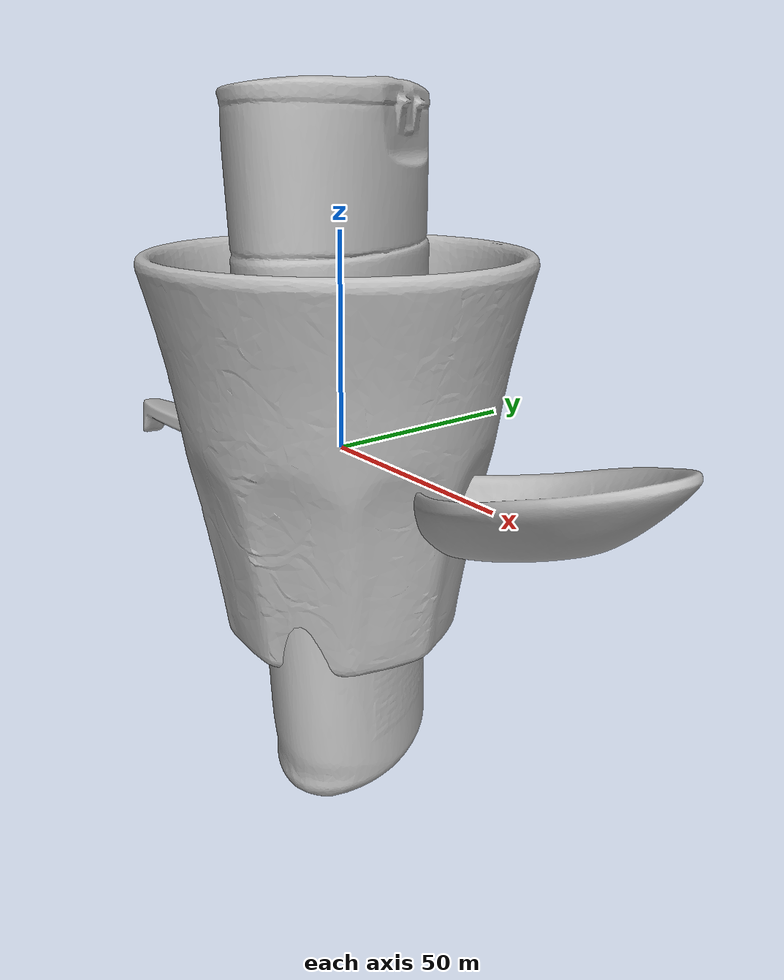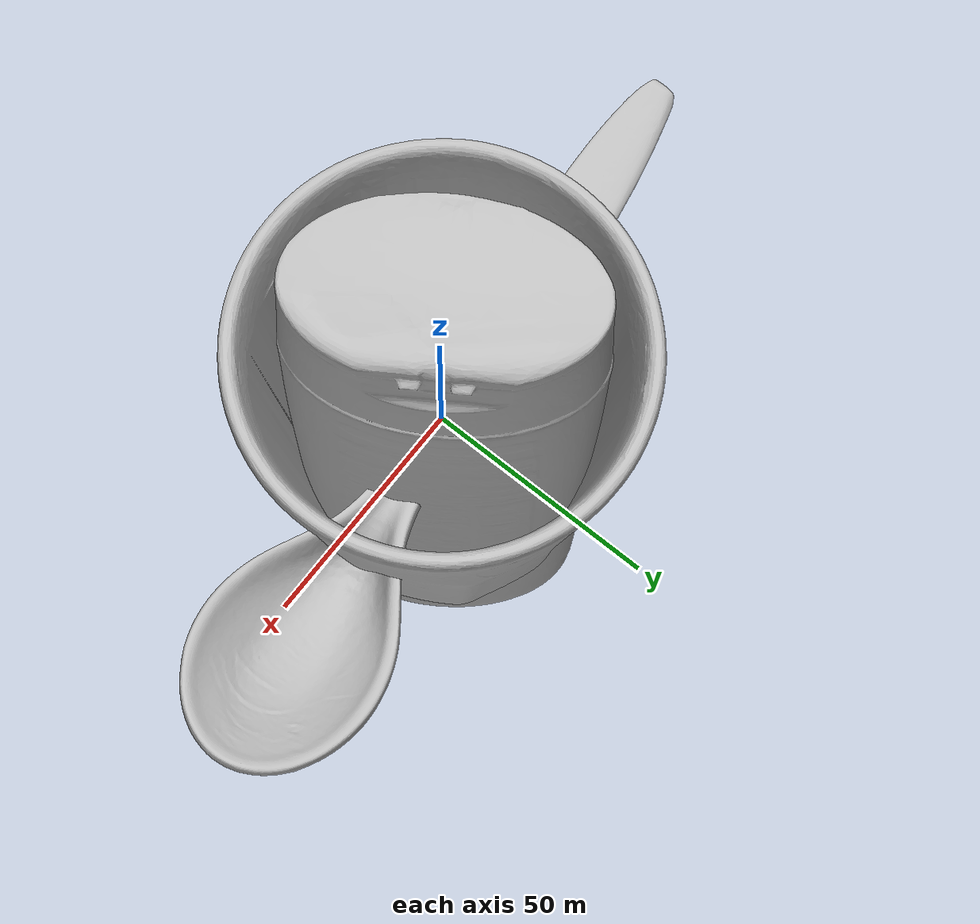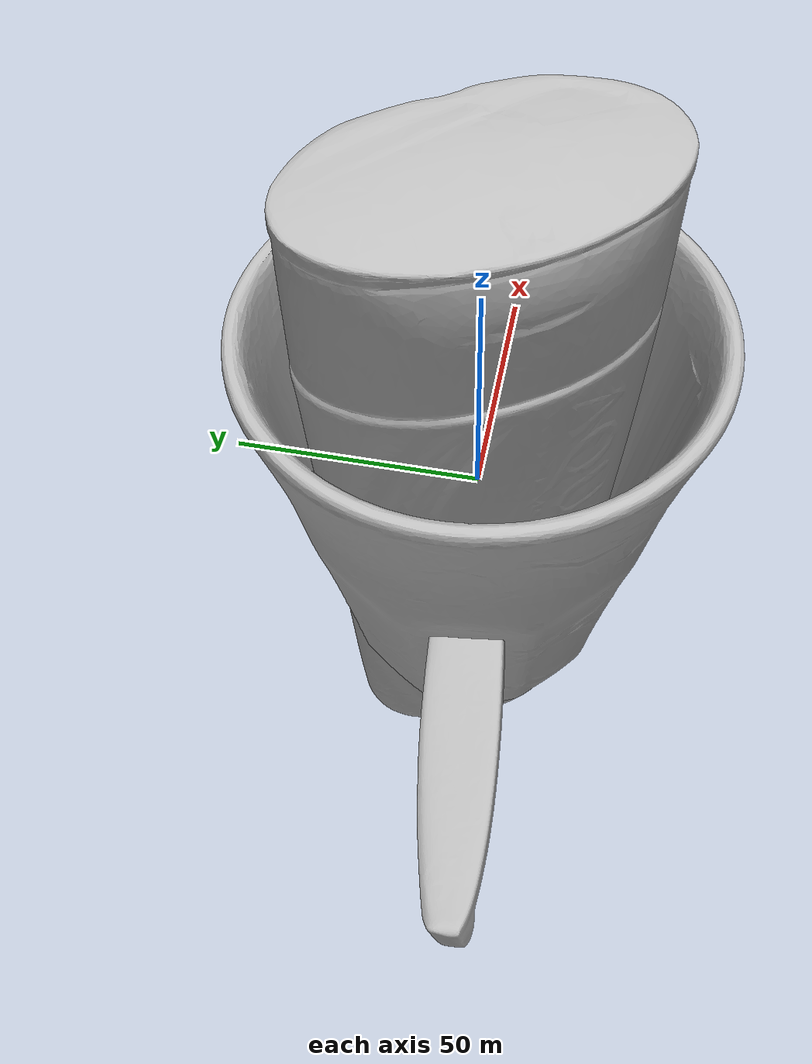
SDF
<sdf version="1.4">
 <world name="default">
  <light name="light1" type="point">
   <pose>0 0 1 0 0 0</pose>
   <diffuse>3 3 3 1</diffuse>
   <specular>3 3 3 1</specular>
  </light>
  <light name="light2" type="point">
   <pose>0 0.5 2 0 0 0</pose>
   <diffuse>1 1 1 1</diffuse>
   <specular>1 1 1 1</specular>
  </light>
  <light name="light3" type="point">
   <pose>0 0.5 2 0 0 0</pose>
   <diffuse>3 3 3 1</diffuse>
   <specular>3 3 3 1</specular>
  </light>
  <scene><ambient>0.7 0.7 0.7</ambient></scene>
  <model name="bottle1">
   <link name="link_bottle1">
    <collision name="default">
     <geometry>
      <mesh><uri>model://conditioner/collision_meshes/collision.obj</uri><scale>1.0 1.0 1.0</scale></mesh>
     </geometry>
     <surface>
      <friction><ode><mu>0.5</mu><mu2>0.5</mu2></ode></friction>
      <contact><ode><max_vel>0</max_vel><min_depth>0.0001</min_depth><kp>1e8</kp></ode></contact>
     </surface>
    </collision>
    <visual name="default">
     <geometry>
      <mesh><uri>model://conditioner/visual_meshes/visual.dae</uri><scale>1.0 1.0 1.0</scale></mesh>
     </geometry>
    </visual>
    <inertial>
     <mass>0.31316134333610535</mass>
     <pose>-0.00055994390277192 -0.0001729748910292983 0.004359682556241751 -0.005038373535624127 0.01530604069317056 0.015072338587352078</pose>
     <inertia>
      <ixx>0.0006812382</ixx>
      <iyy>0.000729753</iyy>
      <izz>0.000105037434</izz>
      <ixy>0</ixy>
      <ixz>0</ixz>
      <iyz>0</iyz>
     </inertia>
    </inertial>
   </link>
   <pose>0.1592370867729187 -0.08441894501447678 0.08122974634170532 0.03689209614310539 -0.015659883931407523 -1.0215270220435955</pose>
  </model>
  <model name="bottle2">
   <link name="link_bottle2">
    <collision name="default">
     <geometry>
      <mesh><uri>model://pigeon/collision_meshes/collision.obj</uri><scale>1.0 1.0 1.0</scale></mesh>
     </geometry>
     <surface>
      <friction><ode><mu>0.5</mu><mu2>0.5</mu2></ode></friction>
      <contact><ode><max_vel>0</max_vel><min_depth>0.0001</min_depth><kp>1e8</kp></ode></contact>
     </surface>
    </collision>
    <visual name="default">
     <geometry><mesh><uri>model://pigeon/visual_meshes/visual.dae</uri><scale>1.0 1.0 1.0</scale></mesh></geometry>
    </visual>
    <inertial>
     <mass>0.6510184407234192</mass>
     <pose>-9.675473847892135e-05 -0.00019276776583865285 -0.01593620888888836 -0.011704407543161608 -0.0012978192378484078 -0.04198827283679603</pose>
     <inertia>
      <ixx>0.0016273881</ixx>
      <iyy>0.0017372583</iyy>
      <izz>0.00033475916</izz>
      <ixy>0</ixy>
      <ixz>0</ixz>
      <iyz>0</iyz>
     </inertia>
    </inertial>
   </link>
   <pose>0.04181762784719467 -0.18338555097579956 0.09864480793476105 2.4377357489179668e-05 2.987276235466157e-06 2.860681171627809</pose>
  </model>
  <model name="silverware1">
   <link name="link_silverware1">
    <collision name="default">
     <geometry>
      <mesh><uri>model://doraemon_spoon/collision_meshes/collision.obj</uri><scale>1.0 1.0 1.0</scale></mesh>
     </geometry>
     <surface>
      <friction><ode><mu>0.5</mu><mu2>0.5</mu2></ode></friction>
      <contact><ode><max_vel>0</max_vel><min_depth>0.0001</min_depth><kp>1e8</kp></ode></contact>
     </surface>
    </collision>
    <visual name="default">
     <geometry>
      <mesh><uri>model://doraemon_spoon/visual_meshes/visual.dae</uri><scale>1.0 1.0 1.0</scale></mesh>
     </geometry>
    </visual>
    <inertial>
     <mass>0.020366016775369644</mass>
     <pose>-0.022165074944496155 -0.0006374584045261145 -0.0033325462136417627 -0.009147200915366215 0.0738041822243956 -0.014123826891092987</pose>
     <inertia>
      <ixx>1.5952605e-06</ixx>
      <iyy>4.5307766e-05</iyy>
      <izz>4.6078047e-05</izz>
      <ixy>0</ixy>
      <ixz>0</ixz>
      <iyz>0</iyz>
     </inertia>
    </inertial>
   </link>
   <pose>-0.00823467317968607 -0.33493149280548096 0.014930068515241146 0.09437268975408691 -0.003980726704143446 -3.007783189780275</pose>
  </model>
  <model name="stationery1">
   <link name="link_stationery1">
    <collision name="default">
     <geometry>
      <mesh><uri>model://correction_fuid/collision_meshes/collision.obj</uri><scale>1.0 1.0 1.0</scale></mesh>
     </geometry>
     <surface>
      <friction><ode><mu>0.5</mu><mu2>0.5</mu2></ode></friction>
      <contact><ode><max_vel>0</max_vel><min_depth>0.0001</min_depth><kp>1e8</kp></ode></contact>
     </surface>
    </collision>
    <visual name="default">
     <geometry>
      <mesh><uri>model://correction_fuid/visual_meshes/visual.dae</uri><scale>1.0 1.0 1.0</scale></mesh>
     </geometry>
    </visual>
    <inertial>
     <mass>0.02487199380993843</mass>
     <pose>-0.00012557733862195164 -0.0009722901741042733 -0.001618212671019137 -0.010846607936808557 0.019488255039962172 -0.015992454917835536</pose>
     <inertia>
      <ixx>2.4088951e-05</ixx>
      <iyy>1.4578937e-06</iyy>
      <izz>2.4715917e-05</izz>
      <ixy>0</ixy>
      <ixz>0</ixz>
      <iyz>0</iyz>
     </inertia>
    </inertial>
   </link>
   <pose>-0.08533995598554611 -0.2821342647075653 0.009632843546569347 -0.0017261465051648865 -0.056142970822248915 3.134197692940084</pose>
  </model>
  <model name="bowl1">
   <link name="link_bowl1">
    <collision name="default">
     <geometry>
      <mesh><uri>model://doraemon_bowl/collision_meshes/collision.obj</uri><scale>1.0 1.0 1.0</scale></mesh>
     </geometry>
     <surface>
      <friction><ode><mu>0.5</mu><mu2>0.5</mu2></ode></friction>
      <contact><ode><max_vel>0</max_vel><min_depth>0.0001</min_depth><kp>1e8</kp></ode></contact>
     </surface>
    </collision>
    <visual name="default">
     <geometry>
      <mesh><uri>model://doraemon_bowl/visual_meshes/visual.dae</uri><scale>1.0 1.0 1.0</scale></mesh>
     </geometry>
    </visual>
    <inertial>
     <mass>0.06713785231113434</mass>
     <pose>-0.014629548415541649 0.000485710974317044 -0.0020864871330559254 -0.005093962398800634 -0.10568405274446478 -0.026426476578293747</pose>
     <inertia>
      <ixx>9.309732e-05</ixx>
      <iyy>0.00012251528</iyy>
      <izz>0.00018024874</izz>
      <ixy>0</ixy>
      <ixz>0</ixz>
      <iyz>0</iyz>
     </inertia>
    </inertial>
   </link>
   <pose>-0.01990625262260437 0.14820289611816406 0.02590550109744072 0.00859721524735175 0.006355321880987094 -0.35152370419231527</pose>
  </model>
  <model name="cup1">
   <link name="link_cup1">
    <collision name="default">
     <geometry>
      <mesh><uri>model://hello_kitty_cup/collision_meshes/collision.obj</uri><scale>1.0 1.0 1.0</scale></mesh>
     </geometry>
     <surface>
      <friction><ode><mu>0.5</mu><mu2>0.5</mu2></ode></friction>
      <contact><ode><max_vel>0</max_vel><min_depth>0.0001</min_depth><kp>1e8</kp></ode></contact>
     </surface>
    </collision>
    <visual name="default">
     <geometry>
      <mesh><uri>model://hello_kitty_cup/visual_meshes/visual.dae</uri><scale>1.0 1.0 1.0</scale></mesh>
     </geometry>
    </visual>
    <inertial>
     <mass>0.13384777307510376</mass>
     <pose>0.00027251095161773264 0.00027950218645855784 0.0030449770856648684 0.057791450277227645 0.007964955326408191 -0.02045228086216793</pose>
     <inertia>
      <ixx>0.0001843247</ixx>
      <iyy>0.0001863793</iyy>
      <izz>0.00015541737</izz>
      <ixy>0</ixy>
      <ixz>0</ixz>
      <iyz>0</iyz>
     </inertia>
    </inertial>
   </link>
   <pose>-0.03039216250181198 -0.235873743891716 0.04621398448944092 -0.005713880532875842 0.010786034032875248 2.485636579953866</pose>
  </model>
  <model name="plate1">
   <link name="link_plate1">
    <collision name="default">
     <geometry>
      <mesh><uri>model://hello_kitty_plate/collision_meshes/collision.obj</uri><scale>1.0 1.0 1.0</scale></mesh>
     </geometry>
     <surface>
      <friction><ode><mu>0.5</mu><mu2>0.5</mu2></ode></friction>
      <contact><ode><max_vel>0</max_vel><min_depth>0.0001</min_depth><kp>1e8</kp></ode></contact>
     </surface>
    </collision>
    <visual name="default">
     <geometry>
      <mesh><uri>model://hello_kitty_plate/visual_meshes/visual.dae</uri><scale>1.0 1.0 1.0</scale></mesh>
     </geometry>
    </visual>
    <inertial>
     <mass>0.0821625292301178</mass>
     <pose>0.0073142931796610355 0.00028937371098436415 -0.0027947186026722193 -0.0001043184795654353 -0.007054440405958318 -0.014449014916312054</pose>
     <inertia>
      <ixx>0.00015843393</ixx>
      <iyy>0.00029901267</iyy>
      <izz>0.00045402072</izz>
      <ixy>0</ixy>
      <ixz>0</ixz>
      <iyz>0</iyz>
     </inertia>
    </inertial>
   </link>
   <pose>0.08042032271623611 0.02420625649392605 0.008291453123092651 0.00046599914274871235 0.004173403506388193 -0.8020051754585727</pose>
  </model>
  <physics type="ode">
   <max_contacts>50</max_contacts>
   <ode>
    <solver><type>quick</type><iters>75</iters></solver>
    <constraints>
     <contact_max_correcting_vel>0</contact_max_correcting_vel>
     <contact_surface_layer>0</contact_surface_layer>
    </constraints>
   </ode>
  </physics>
 </world>
</sdf>
